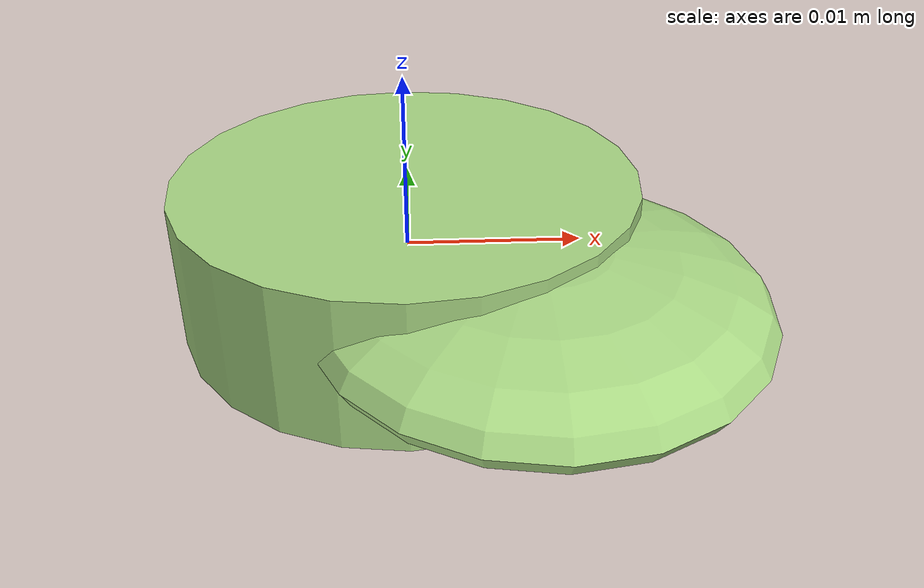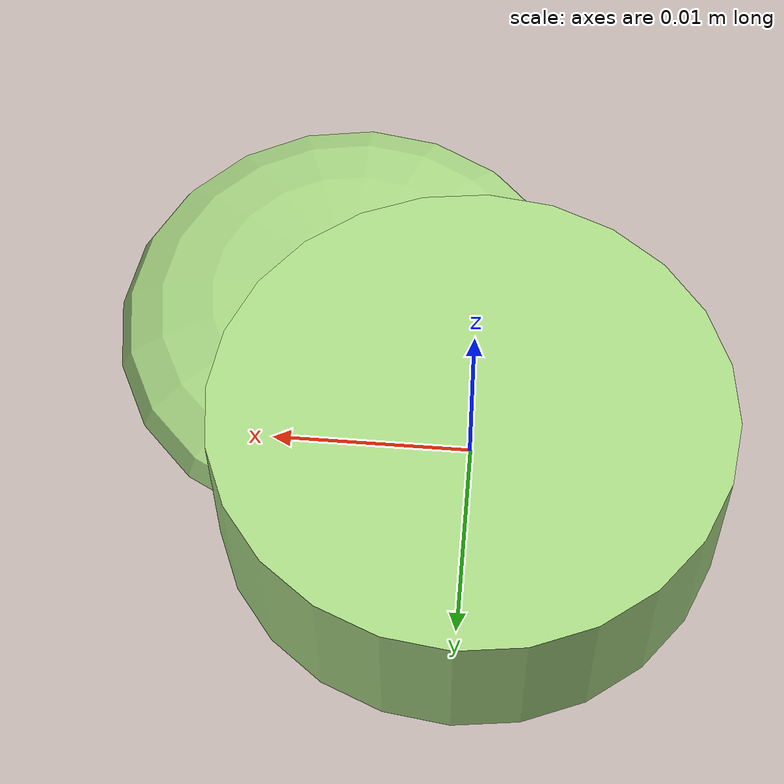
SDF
<?xml version="1.0" ?>
<!-- |    This document was autogenerated by xmacro from data/veggie_template/veggie_base.sdf.xacro  | -->
<!-- |    EDITING THIS FILE BY HAND IS NOT RECOMMENDED                                               | -->
<sdf version="1.8">
	<!-- Parameters -->
	<!-- Base -->
	<!-- Joint 0 -->
	<!-- Link 1 -->
	<!-- Joint 1 -->
	<!-- Link 2 -->
	<!-- Primitives -->
	<!-- All dimensions are half -->
	<!-- Object -->
	<model name="veggie">
		<!-- link0 -->
		<link name="link0">
			<inertial>
				<mass>0.00454303586393404</mass>
				<inertia>
					<ixx>2.204272674447601e-07</ixx>
					<ixy>0</ixy>
					<ixz>0</ixz>
					<iyy>2.204272674447601e-07</iyy>
					<iyz>0</iyz>
					<izz>3.8602986979129423e-07</izz>
				</inertia>
			</inertial>
			<visual name="link0_visual">
				<pose>0 0 0 0 0 0</pose>
				<geometry>
					<cylinder>
						<radius>0.013036240691656556</radius>
						<length>0.008509235362809772</length>
					</cylinder>
				</geometry>
				<material>
					<ambient>0.659 0.839 0.514 1</ambient>
					<diffuse>0.659 0.839 0.514 1</diffuse>
					<specular>0 0 0 0</specular>
					<emissive>0 0 0 1</emissive>
				</material>
			</visual>
			<collision name="link0_collision">
				<pose>0 0 0 0 0 0 </pose>
				<geometry>
					<cylinder>
						<radius>0.013036240691656556</radius>
						<length>0.008509235362809772</length>
					</cylinder>
				</geometry>
			</collision>
		</link>
		<!-- link1 -->
		<joint name="joint0" type="fixed">
			<pose relative_to="link0">0.0066808680618227 -0.007185898067666185 0.0005658051027805607 0.0 0.0 0.0</pose>
			<parent>link0</parent>
			<child>link1</child>
		</joint>
		<link name="link1">
			<pose relative_to="joint0">0 0 0 0 0 0</pose>
			<inertial>
				<mass>0.002013641984374444</mass>
				<inertia>
					<ixx>6.746401567165884e-08</ixx>
					<ixy>0</ixy>
					<ixz>0</ixz>
					<iyy>6.289738772498302e-08</iyy>
					<iyz>0</iyz>
					<izz>1.2227312288206625e-07</izz>
				</inertia>
			</inertial>
			<visual name="link1_visual">
				<pose>0 0 0 0 0 0</pose>
				<geometry>
					<ellipsoid>
						<radii>0.012088685782389148 0.01254892621088374 0.0031688886422797783</radii>
					</ellipsoid>
				</geometry>
				<material>
					<ambient>0.659 0.839 0.514 1</ambient>
					<diffuse>0.659 0.839 0.514 1</diffuse>
					<specular>0 0 0 0</specular>
					<emissive>0 0 0 1</emissive>
				</material>
			</visual>
			<collision name="link1_collision">
				<pose>0 0 0 0 0 0 </pose>
				<geometry>
					<ellipsoid>
						<radii>0.012088685782389148 0.01254892621088374 0.0031688886422797783</radii>
					</ellipsoid>
				</geometry>
			</collision>
		</link>
		<!-- link2 -->
	</model>
</sdf>
